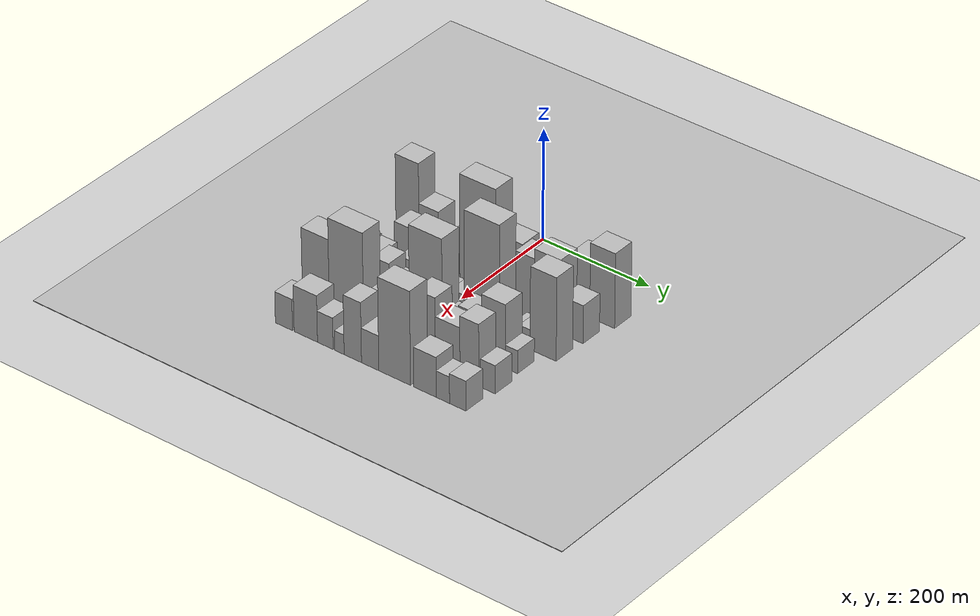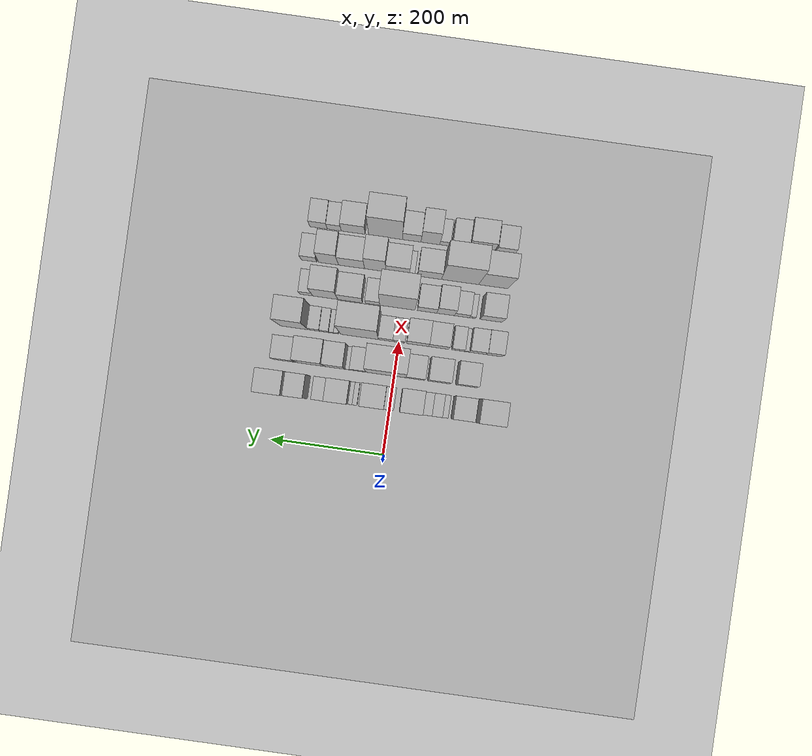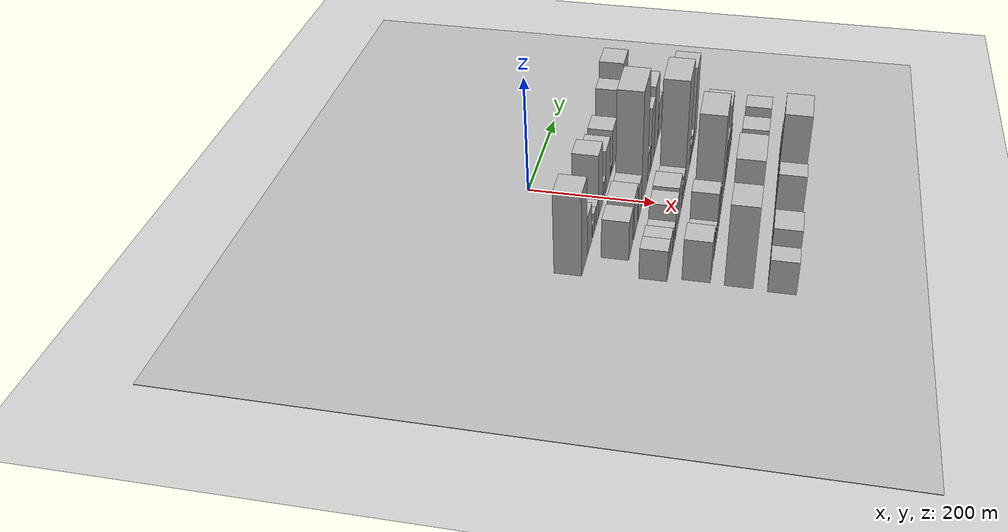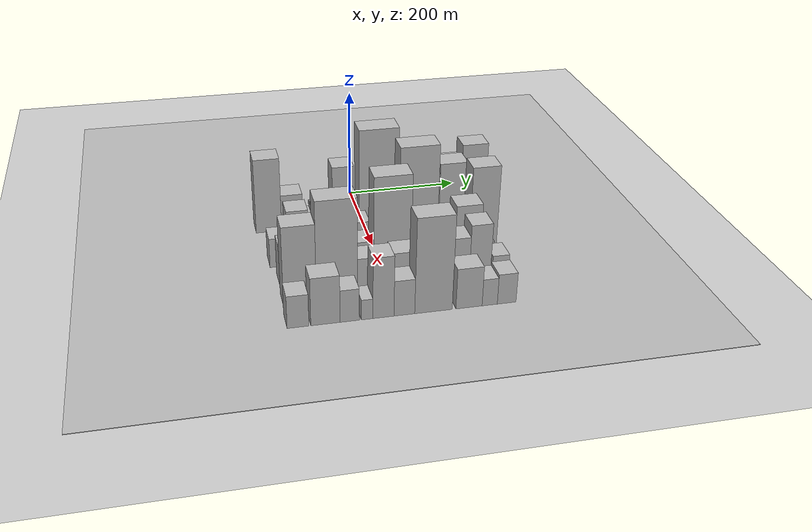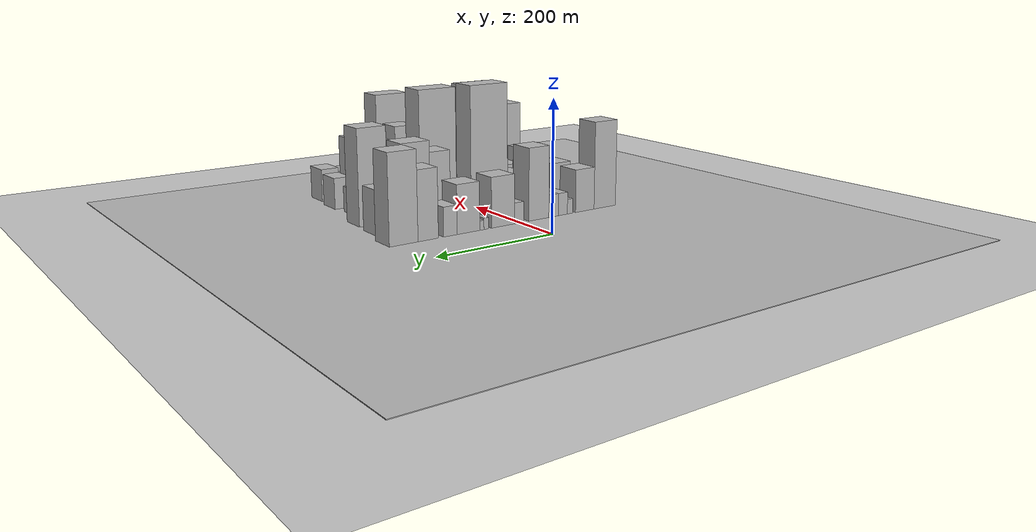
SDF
<sdf version="1.6">
 <world name="default">
  <include><name>ground_plane_1</name><uri>model://HANNAS_ground_plane</uri></include>
  <include>
   <name>ground_plane_2</name>
   <uri>model://HANNAS_ground_plane</uri>
   <pose>100 0 0  0 0 0</pose>
  </include>
  <model name="building_22">
   <static>1</static>
   <pose>100.0000 -168.6694 0 0.000000 0.000000 0.000000</pose>
   <link name="link">
    <pose>0 0 70.50 0 0 0</pose>
    <collision name="collision"><geometry><box><size>40.0000 45.0312 141.0000</size></box></geometry></collision>
    <visual name="visual">
     <cast_shadows>0</cast_shadows>
     <geometry><box><size>40.0000 45.0312 141.0000</size></box></geometry>
     <material>
      <script>
       <uri>model://HANNAS_wall/materials/scripts</uri>
       <uri>model://HANNAS_wall/materials/textures</uri>
       <name>vrc/HANNAS_wall</name>
      </script>
     </material>
    </visual>
   </link>
  </model>
  <model name="building_23">
   <static>1</static>
   <pose>100.0000 -127.0873 0 0.000000 0.000000 0.000000</pose>
   <link name="link">
    <pose>0 0 34.50 0 0 0</pose>
    <collision name="collision"><geometry><box><size>40.0000 38.1330 69.0000</size></box></geometry></collision>
    <visual name="visual">
     <cast_shadows>0</cast_shadows>
     <geometry><box><size>40.0000 38.1330 69.0000</size></box></geometry>
     <material>
      <script>
       <uri>model://HANNAS_wall/materials/scripts</uri>
       <uri>model://HANNAS_wall/materials/textures</uri>
       <name>vrc/HANNAS_wall</name>
      </script>
     </material>
    </visual>
   </link>
  </model>
  <model name="building_24">
   <static>1</static>
   <pose>100.0000 -96.7946 0 0.000000 0.000000 0.000000</pose>
   <link name="link">
    <pose>0 0 12.00 0 0 0</pose>
    <collision name="collision"><geometry><box><size>40.0000 10.4522 24.0000</size></box></geometry></collision>
    <visual name="visual">
     <cast_shadows>0</cast_shadows>
     <geometry><box><size>40.0000 10.4522 24.0000</size></box></geometry>
     <material>
      <script>
       <uri>model://HANNAS_wall/materials/scripts</uri>
       <uri>model://HANNAS_wall/materials/textures</uri>
       <name>vrc/HANNAS_wall</name>
      </script>
     </material>
    </visual>
   </link>
  </model>
  <model name="building_25">
   <static>1</static>
   <pose>100.0000 -82.4453 0 0.000000 0.000000 0.000000</pose>
   <link name="link">
    <pose>0 0 18.00 0 0 0</pose>
    <collision name="collision"><geometry><box><size>40.0000 18.2464 36.0000</size></box></geometry></collision>
    <visual name="visual">
     <cast_shadows>0</cast_shadows>
     <geometry><box><size>40.0000 18.2464 36.0000</size></box></geometry>
     <material>
      <script>
       <uri>model://HANNAS_wall/materials/scripts</uri>
       <uri>model://HANNAS_wall/materials/textures</uri>
       <name>vrc/HANNAS_wall</name>
      </script>
     </material>
    </visual>
   </link>
  </model>
  <model name="building_26">
   <static>1</static>
   <pose>100.0000 -64.1063 0 0.000000 0.000000 0.000000</pose>
   <link name="link">
    <pose>0 0 18.00 0 0 0</pose>
    <collision name="collision"><geometry><box><size>40.0000 18.4317 36.0000</size></box></geometry></collision>
    <visual name="visual">
     <cast_shadows>0</cast_shadows>
     <geometry><box><size>40.0000 18.4317 36.0000</size></box></geometry>
     <material>
      <script>
       <uri>model://HANNAS_wall/materials/scripts</uri>
       <uri>model://HANNAS_wall/materials/textures</uri>
       <name>vrc/HANNAS_wall</name>
      </script>
     </material>
    </visual>
   </link>
  </model>
  <model name="building_27">
   <static>1</static>
   <pose>100.0000 -35.6017 0 0.000000 0.000000 0.000000</pose>
   <link name="link">
    <pose>0 0 57.00 0 0 0</pose>
    <collision name="collision"><geometry><box><size>40.0000 38.5774 114.0000</size></box></geometry></collision>
    <visual name="visual">
     <cast_shadows>0</cast_shadows>
     <geometry><box><size>40.0000 38.5774 114.0000</size></box></geometry>
     <material>
      <script>
       <uri>model://HANNAS_wall/materials/scripts</uri>
       <uri>model://HANNAS_wall/materials/textures</uri>
       <name>vrc/HANNAS_wall</name>
      </script>
     </material>
    </visual>
   </link>
  </model>
  <model name="building_28">
   <static>1</static>
   <pose>100.0000 2.2748 0 0.000000 0.000000 0.000000</pose>
   <link name="link">
    <pose>0 0 16.50 0 0 0</pose>
    <collision name="collision"><geometry><box><size>40.0000 17.1756 33.0000</size></box></geometry></collision>
    <visual name="visual">
     <cast_shadows>0</cast_shadows>
     <geometry><box><size>40.0000 17.1756 33.0000</size></box></geometry>
     <material>
      <script>
       <uri>model://HANNAS_wall/materials/scripts</uri>
       <uri>model://HANNAS_wall/materials/textures</uri>
       <name>vrc/HANNAS_wall</name>
      </script>
     </material>
    </visual>
   </link>
  </model>
  <model name="building_29">
   <static>1</static>
   <pose>100.0000 32.0478 0 0.000000 0.000000 0.000000</pose>
   <link name="link">
    <pose>0 0 39.00 0 0 0</pose>
    <collision name="collision"><geometry><box><size>40.0000 42.3704 78.0000</size></box></geometry></collision>
    <visual name="visual">
     <cast_shadows>0</cast_shadows>
     <geometry><box><size>40.0000 42.3704 78.0000</size></box></geometry>
     <material>
      <script>
       <uri>model://HANNAS_wall/materials/scripts</uri>
       <uri>model://HANNAS_wall/materials/textures</uri>
       <name>vrc/HANNAS_wall</name>
      </script>
     </material>
    </visual>
   </link>
  </model>
  <model name="building_30">
   <static>1</static>
   <pose>100.0000 62.5855 0 0.000000 0.000000 0.000000</pose>
   <link name="link">
    <pose>0 0 9.00 0 0 0</pose>
    <collision name="collision"><geometry><box><size>40.0000 8.7050 18.0000</size></box></geometry></collision>
    <visual name="visual">
     <cast_shadows>0</cast_shadows>
     <geometry><box><size>40.0000 8.7050 18.0000</size></box></geometry>
     <material>
      <script>
       <uri>model://HANNAS_wall/materials/scripts</uri>
       <uri>model://HANNAS_wall/materials/textures</uri>
       <name>vrc/HANNAS_wall</name>
      </script>
     </material>
    </visual>
   </link>
  </model>
  <model name="building_31">
   <static>1</static>
   <pose>100.0000 70.6687 0 0.000000 0.000000 0.000000</pose>
   <link name="link">
    <pose>0 0 7.50 0 0 0</pose>
    <collision name="collision"><geometry><box><size>40.0000 7.4614 15.0000</size></box></geometry></collision>
    <visual name="visual">
     <cast_shadows>0</cast_shadows>
     <geometry><box><size>40.0000 7.4614 15.0000</size></box></geometry>
     <material>
      <script>
       <uri>model://HANNAS_wall/materials/scripts</uri>
       <uri>model://HANNAS_wall/materials/textures</uri>
       <name>vrc/HANNAS_wall</name>
      </script>
     </material>
    </visual>
   </link>
  </model>
  <model name="building_32">
   <static>1</static>
   <pose>100.0000 94.2671 0 0.000000 0.000000 0.000000</pose>
   <link name="link">
    <pose>0 0 37.50 0 0 0</pose>
    <collision name="collision"><geometry><box><size>40.0000 39.7354 75.0000</size></box></geometry></collision>
    <visual name="visual">
     <cast_shadows>0</cast_shadows>
     <geometry><box><size>40.0000 39.7354 75.0000</size></box></geometry>
     <material>
      <script>
       <uri>model://HANNAS_wall/materials/scripts</uri>
       <uri>model://HANNAS_wall/materials/textures</uri>
       <name>vrc/HANNAS_wall</name>
      </script>
     </material>
    </visual>
   </link>
  </model>
  <model name="building_33">
   <static>1</static>
   <pose>100.0000 125.7722 0 0.000000 0.000000 0.000000</pose>
   <link name="link">
    <pose>0 0 22.50 0 0 0</pose>
    <collision name="collision"><geometry><box><size>40.0000 23.2749 45.0000</size></box></geometry></collision>
    <visual name="visual">
     <cast_shadows>0</cast_shadows>
     <geometry><box><size>40.0000 23.2749 45.0000</size></box></geometry>
     <material>
      <script>
       <uri>model://HANNAS_wall/materials/scripts</uri>
       <uri>model://HANNAS_wall/materials/textures</uri>
       <name>vrc/HANNAS_wall</name>
      </script>
     </material>
    </visual>
   </link>
  </model>
  <model name="building_34">
   <static>1</static>
   <pose>100.0000 163.4008 0 0.000000 0.000000 0.000000</pose>
   <link name="link">
    <pose>0 0 52.50 0 0 0</pose>
    <collision name="collision"><geometry><box><size>40.0000 33.9822 105.0000</size></box></geometry></collision>
    <visual name="visual">
     <cast_shadows>0</cast_shadows>
     <geometry><box><size>40.0000 33.9822 105.0000</size></box></geometry>
     <material>
      <script>
       <uri>model://HANNAS_wall/materials/scripts</uri>
       <uri>model://HANNAS_wall/materials/textures</uri>
       <name>vrc/HANNAS_wall</name>
      </script>
     </material>
    </visual>
   </link>
  </model>
  <model name="building_35">
   <static>1</static>
   <pose>100.0000 203.6889 0 0.000000 0.000000 0.000000</pose>
   <link name="link">
    <pose>0 0 67.50 0 0 0</pose>
    <collision name="collision"><geometry><box><size>40.0000 46.5941 135.0000</size></box></geometry></collision>
    <visual name="visual">
     <cast_shadows>0</cast_shadows>
     <geometry><box><size>40.0000 46.5941 135.0000</size></box></geometry>
     <material>
      <script>
       <uri>model://HANNAS_wall/materials/scripts</uri>
       <uri>model://HANNAS_wall/materials/textures</uri>
       <name>vrc/HANNAS_wall</name>
      </script>
     </material>
    </visual>
   </link>
  </model>
  <model name="building_78">
   <static>1</static>
   <pose>160.0000 -126.2597 0 0.000000 0.000000 0.000000</pose>
   <link name="link">
    <pose>0 0 34.50 0 0 0</pose>
    <collision name="collision"><geometry><box><size>40.0000 37.5945 69.0000</size></box></geometry></collision>
    <visual name="visual">
     <cast_shadows>0</cast_shadows>
     <geometry><box><size>40.0000 37.5945 69.0000</size></box></geometry>
     <material>
      <script>
       <uri>model://HANNAS_wall/materials/scripts</uri>
       <uri>model://HANNAS_wall/materials/textures</uri>
       <name>vrc/HANNAS_wall</name>
      </script>
     </material>
    </visual>
   </link>
  </model>
  <model name="building_79">
   <static>1</static>
   <pose>160.0000 -77.7265 0 0.000000 0.000000 0.000000</pose>
   <link name="link">
    <pose>0 0 37.50 0 0 0</pose>
    <collision name="collision"><geometry><box><size>40.0000 39.4718 75.0000</size></box></geometry></collision>
    <visual name="visual">
     <cast_shadows>0</cast_shadows>
     <geometry><box><size>40.0000 39.4718 75.0000</size></box></geometry>
     <material>
      <script>
       <uri>model://HANNAS_wall/materials/scripts</uri>
       <uri>model://HANNAS_wall/materials/textures</uri>
       <name>vrc/HANNAS_wall</name>
      </script>
     </material>
    </visual>
   </link>
  </model>
  <model name="building_80">
   <static>1</static>
   <pose>160.0000 -35.9864 0 0.000000 0.000000 0.000000</pose>
   <link name="link">
    <pose>0 0 31.50 0 0 0</pose>
    <collision name="collision"><geometry><box><size>40.0000 34.0084 63.0000</size></box></geometry></collision>
    <visual name="visual">
     <cast_shadows>0</cast_shadows>
     <geometry><box><size>40.0000 34.0084 63.0000</size></box></geometry>
     <material>
      <script>
       <uri>model://HANNAS_wall/materials/scripts</uri>
       <uri>model://HANNAS_wall/materials/textures</uri>
       <name>vrc/HANNAS_wall</name>
      </script>
     </material>
    </visual>
   </link>
  </model>
  <model name="building_81">
   <static>1</static>
   <pose>160.0000 15.2245 0 0.000000 0.000000 0.000000</pose>
   <link name="link">
    <pose>0 0 103.50 0 0 0</pose>
    <collision name="collision"><geometry><box><size>40.0000 68.4135 207.0000</size></box></geometry></collision>
    <visual name="visual">
     <cast_shadows>0</cast_shadows>
     <geometry><box><size>40.0000 68.4135 207.0000</size></box></geometry>
     <material>
      <script>
       <uri>model://HANNAS_wall/materials/scripts</uri>
       <uri>model://HANNAS_wall/materials/textures</uri>
       <name>vrc/HANNAS_wall</name>
      </script>
     </material>
    </visual>
   </link>
  </model>
  <model name="building_82">
   <static>1</static>
   <pose>160.0000 64.0984 0 0.000000 0.000000 0.000000</pose>
   <link name="link">
    <pose>0 0 25.50 0 0 0</pose>
    <collision name="collision"><geometry><box><size>40.0000 29.3343 51.0000</size></box></geometry></collision>
    <visual name="visual">
     <cast_shadows>0</cast_shadows>
     <geometry><box><size>40.0000 29.3343 51.0000</size></box></geometry>
     <material>
      <script>
       <uri>model://HANNAS_wall/materials/scripts</uri>
       <uri>model://HANNAS_wall/materials/textures</uri>
       <name>vrc/HANNAS_wall</name>
      </script>
     </material>
    </visual>
   </link>
  </model>
  <model name="building_83">
   <static>1</static>
   <pose>160.0000 82.9798 0 0.000000 0.000000 0.000000</pose>
   <link name="link">
    <pose>0 0 10.50 0 0 0</pose>
    <collision name="collision"><geometry><box><size>40.0000 8.4284 21.0000</size></box></geometry></collision>
    <visual name="visual">
     <cast_shadows>0</cast_shadows>
     <geometry><box><size>40.0000 8.4284 21.0000</size></box></geometry>
     <material>
      <script>
       <uri>model://HANNAS_wall/materials/scripts</uri>
       <uri>model://HANNAS_wall/materials/textures</uri>
       <name>vrc/HANNAS_wall</name>
      </script>
     </material>
    </visual>
   </link>
  </model>
  <model name="building_84">
   <static>1</static>
   <pose>160.0000 105.0675 0 0.000000 0.000000 0.000000</pose>
   <link name="link">
    <pose>0 0 57.00 0 0 0</pose>
    <collision name="collision"><geometry><box><size>40.0000 35.7471 114.0000</size></box></geometry></collision>
    <visual name="visual">
     <cast_shadows>0</cast_shadows>
     <geometry><box><size>40.0000 35.7471 114.0000</size></box></geometry>
     <material>
      <script>
       <uri>model://HANNAS_wall/materials/scripts</uri>
       <uri>model://HANNAS_wall/materials/textures</uri>
       <name>vrc/HANNAS_wall</name>
      </script>
     </material>
    </visual>
   </link>
  </model>
  <model name="building_85">
   <static>1</static>
   <pose>160.0000 147.1211 0 0.000000 0.000000 0.000000</pose>
   <link name="link">
    <pose>0 0 66.00 0 0 0</pose>
    <collision name="collision"><geometry><box><size>40.0000 48.3600 132.0000</size></box></geometry></collision>
    <visual name="visual">
     <cast_shadows>0</cast_shadows>
     <geometry><box><size>40.0000 48.3600 132.0000</size></box></geometry>
     <material>
      <script>
       <uri>model://HANNAS_wall/materials/scripts</uri>
       <uri>model://HANNAS_wall/materials/textures</uri>
       <name>vrc/HANNAS_wall</name>
      </script>
     </material>
    </visual>
   </link>
  </model>
  <model name="building_86">
   <static>1</static>
   <pose>160.0000 194.2117 0 0.000000 0.000000 0.000000</pose>
   <link name="link">
    <pose>0 0 34.50 0 0 0</pose>
    <collision name="collision"><geometry><box><size>40.0000 39.8213 69.0000</size></box></geometry></collision>
    <visual name="visual">
     <cast_shadows>0</cast_shadows>
     <geometry><box><size>40.0000 39.8213 69.0000</size></box></geometry>
     <material>
      <script>
       <uri>model://HANNAS_wall/materials/scripts</uri>
       <uri>model://HANNAS_wall/materials/textures</uri>
       <name>vrc/HANNAS_wall</name>
      </script>
     </material>
    </visual>
   </link>
  </model>
  <model name="building_137">
   <static>1</static>
   <pose>220.0000 -167.5142 0 0.000000 0.000000 0.000000</pose>
   <link name="link">
    <pose>0 0 27.00 0 0 0</pose>
    <collision name="collision"><geometry><box><size>40.0000 28.7188 54.0000</size></box></geometry></collision>
    <visual name="visual">
     <cast_shadows>0</cast_shadows>
     <geometry><box><size>40.0000 28.7188 54.0000</size></box></geometry>
     <material>
      <script>
       <uri>model://HANNAS_wall/materials/scripts</uri>
       <uri>model://HANNAS_wall/materials/textures</uri>
       <name>vrc/HANNAS_wall</name>
      </script>
     </material>
    </visual>
   </link>
  </model>
  <model name="building_138">
   <static>1</static>
   <pose>220.0000 -138.2313 0 0.000000 0.000000 0.000000</pose>
   <link name="link">
    <pose>0 0 25.50 0 0 0</pose>
    <collision name="collision"><geometry><box><size>40.0000 29.8470 51.0000</size></box></geometry></collision>
    <visual name="visual">
     <cast_shadows>0</cast_shadows>
     <geometry><box><size>40.0000 29.8470 51.0000</size></box></geometry>
     <material>
      <script>
       <uri>model://HANNAS_wall/materials/scripts</uri>
       <uri>model://HANNAS_wall/materials/textures</uri>
       <name>vrc/HANNAS_wall</name>
      </script>
     </material>
    </visual>
   </link>
  </model>
  <model name="building_139">
   <static>1</static>
   <pose>220.0000 -118.9698 0 0.000000 0.000000 0.000000</pose>
   <link name="link">
    <pose>0 0 9.00 0 0 0</pose>
    <collision name="collision"><geometry><box><size>40.0000 8.6760 18.0000</size></box></geometry></collision>
    <visual name="visual">
     <cast_shadows>0</cast_shadows>
     <geometry><box><size>40.0000 8.6760 18.0000</size></box></geometry>
     <material>
      <script>
       <uri>model://HANNAS_wall/materials/scripts</uri>
       <uri>model://HANNAS_wall/materials/textures</uri>
       <name>vrc/HANNAS_wall</name>
      </script>
     </material>
    </visual>
   </link>
  </model>
  <model name="building_140">
   <static>1</static>
   <pose>220.0000 -103.5277 0 0.000000 0.000000 0.000000</pose>
   <link name="link">
    <pose>0 0 19.50 0 0 0</pose>
    <collision name="collision"><geometry><box><size>40.0000 22.2082 39.0000</size></box></geometry></collision>
    <visual name="visual">
     <cast_shadows>0</cast_shadows>
     <geometry><box><size>40.0000 22.2082 39.0000</size></box></geometry>
     <material>
      <script>
       <uri>model://HANNAS_wall/materials/scripts</uri>
       <uri>model://HANNAS_wall/materials/textures</uri>
       <name>vrc/HANNAS_wall</name>
      </script>
     </material>
    </visual>
   </link>
  </model>
  <model name="building_141">
   <static>1</static>
   <pose>220.0000 -69.5356 0 0.000000 0.000000 0.000000</pose>
   <link name="link">
    <pose>0 0 31.50 0 0 0</pose>
    <collision name="collision"><geometry><box><size>40.0000 35.7761 63.0000</size></box></geometry></collision>
    <visual name="visual">
     <cast_shadows>0</cast_shadows>
     <geometry><box><size>40.0000 35.7761 63.0000</size></box></geometry>
     <material>
      <script>
       <uri>model://HANNAS_wall/materials/scripts</uri>
       <uri>model://HANNAS_wall/materials/textures</uri>
       <name>vrc/HANNAS_wall</name>
      </script>
     </material>
    </visual>
   </link>
  </model>
  <model name="building_142">
   <static>1</static>
   <pose>220.0000 -32.1963 0 0.000000 0.000000 0.000000</pose>
   <link name="link">
    <pose>0 0 34.50 0 0 0</pose>
    <collision name="collision"><geometry><box><size>40.0000 38.9025 69.0000</size></box></geometry></collision>
    <visual name="visual">
     <cast_shadows>0</cast_shadows>
     <geometry><box><size>40.0000 38.9025 69.0000</size></box></geometry>
     <material>
      <script>
       <uri>model://HANNAS_wall/materials/scripts</uri>
       <uri>model://HANNAS_wall/materials/textures</uri>
       <name>vrc/HANNAS_wall</name>
      </script>
     </material>
    </visual>
   </link>
  </model>
  <model name="building_143">
   <static>1</static>
   <pose>220.0000 0.9673 0 0.000000 0.000000 0.000000</pose>
   <link name="link">
    <pose>0 0 19.50 0 0 0</pose>
    <collision name="collision"><geometry><box><size>40.0000 21.4247 39.0000</size></box></geometry></collision>
    <visual name="visual">
     <cast_shadows>0</cast_shadows>
     <geometry><box><size>40.0000 21.4247 39.0000</size></box></geometry>
     <material>
      <script>
       <uri>model://HANNAS_wall/materials/scripts</uri>
       <uri>model://HANNAS_wall/materials/textures</uri>
       <name>vrc/HANNAS_wall</name>
      </script>
     </material>
    </visual>
   </link>
  </model>
  <model name="building_144">
   <static>1</static>
   <pose>220.0000 24.5465 0 0.000000 0.000000 0.000000</pose>
   <link name="link">
    <pose>0 0 22.50 0 0 0</pose>
    <collision name="collision"><geometry><box><size>40.0000 25.7337 45.0000</size></box></geometry></collision>
    <visual name="visual">
     <cast_shadows>0</cast_shadows>
     <geometry><box><size>40.0000 25.7337 45.0000</size></box></geometry>
     <material>
      <script>
       <uri>model://HANNAS_wall/materials/scripts</uri>
       <uri>model://HANNAS_wall/materials/textures</uri>
       <name>vrc/HANNAS_wall</name>
      </script>
     </material>
    </visual>
   </link>
  </model>
  <model name="building_145">
   <static>1</static>
   <pose>220.0000 70.5505 0 0.000000 0.000000 0.000000</pose>
   <link name="link">
    <pose>0 0 99.00 0 0 0</pose>
    <collision name="collision"><geometry><box><size>40.0000 66.2743 198.0000</size></box></geometry></collision>
    <visual name="visual">
     <cast_shadows>0</cast_shadows>
     <geometry><box><size>40.0000 66.2743 198.0000</size></box></geometry>
     <material>
      <script>
       <uri>model://HANNAS_wall/materials/scripts</uri>
       <uri>model://HANNAS_wall/materials/textures</uri>
       <name>vrc/HANNAS_wall</name>
      </script>
     </material>
    </visual>
   </link>
  </model>
  <model name="building_146">
   <static>1</static>
   <pose>220.0000 112.0741 0 0.000000 0.000000 0.000000</pose>
   <link name="link">
    <pose>0 0 9.00 0 0 0</pose>
    <collision name="collision"><geometry><box><size>40.0000 8.7728 18.0000</size></box></geometry></collision>
    <visual name="visual">
     <cast_shadows>0</cast_shadows>
     <geometry><box><size>40.0000 8.7728 18.0000</size></box></geometry>
     <material>
      <script>
       <uri>model://HANNAS_wall/materials/scripts</uri>
       <uri>model://HANNAS_wall/materials/textures</uri>
       <name>vrc/HANNAS_wall</name>
      </script>
     </material>
    </visual>
   </link>
  </model>
  <model name="building_147">
   <static>1</static>
   <pose>220.0000 120.5434 0 0.000000 0.000000 0.000000</pose>
   <link name="link">
    <pose>0 0 9.00 0 0 0</pose>
    <collision name="collision"><geometry><box><size>40.0000 8.1659 18.0000</size></box></geometry></collision>
    <visual name="visual">
     <cast_shadows>0</cast_shadows>
     <geometry><box><size>40.0000 8.1659 18.0000</size></box></geometry>
     <material>
      <script>
       <uri>model://HANNAS_wall/materials/scripts</uri>
       <uri>model://HANNAS_wall/materials/textures</uri>
       <name>vrc/HANNAS_wall</name>
      </script>
     </material>
    </visual>
   </link>
  </model>
  <model name="building_148">
   <static>1</static>
   <pose>220.0000 132.6926 0 0.000000 0.000000 0.000000</pose>
   <link name="link">
    <pose>0 0 15.00 0 0 0</pose>
    <collision name="collision"><geometry><box><size>40.0000 16.1325 30.0000</size></box></geometry></collision>
    <visual name="visual">
     <cast_shadows>0</cast_shadows>
     <geometry><box><size>40.0000 16.1325 30.0000</size></box></geometry>
     <material>
      <script>
       <uri>model://HANNAS_wall/materials/scripts</uri>
       <uri>model://HANNAS_wall/materials/textures</uri>
       <name>vrc/HANNAS_wall</name>
      </script>
     </material>
    </visual>
   </link>
  </model>
  <model name="building_149">
   <static>1</static>
   <pose>220.0000 151.2144 0 0.000000 0.000000 0.000000</pose>
   <link name="link">
    <pose>0 0 18.00 0 0 0</pose>
    <collision name="collision"><geometry><box><size>40.0000 20.9111 36.0000</size></box></geometry></collision>
    <visual name="visual">
     <cast_shadows>0</cast_shadows>
     <geometry><box><size>40.0000 20.9111 36.0000</size></box></geometry>
     <material>
      <script>
       <uri>model://HANNAS_wall/materials/scripts</uri>
       <uri>model://HANNAS_wall/materials/textures</uri>
       <name>vrc/HANNAS_wall</name>
      </script>
     </material>
    </visual>
   </link>
  </model>
  <model name="building_150">
   <static>1</static>
   <pose>220.0000 185.9614 0 0.000000 0.000000 0.000000</pose>
   <link name="link">
    <pose>0 0 75.00 0 0 0</pose>
    <collision name="collision"><geometry><box><size>40.0000 48.5829 150.0000</size></box></geometry></collision>
    <visual name="visual">
     <cast_shadows>0</cast_shadows>
     <geometry><box><size>40.0000 48.5829 150.0000</size></box></geometry>
     <material>
      <script>
       <uri>model://HANNAS_wall/materials/scripts</uri>
       <uri>model://HANNAS_wall/materials/textures</uri>
       <name>vrc/HANNAS_wall</name>
      </script>
     </material>
    </visual>
   </link>
  </model>
  <model name="building_194">
   <static>1</static>
   <pose>280.0000 -154.0582 0 0.000000 0.000000 0.000000</pose>
   <link name="link">
    <pose>0 0 36.00 0 0 0</pose>
    <collision name="collision"><geometry><box><size>40.0000 39.1322 72.0000</size></box></geometry></collision>
    <visual name="visual">
     <cast_shadows>0</cast_shadows>
     <geometry><box><size>40.0000 39.1322 72.0000</size></box></geometry>
     <material>
      <script>
       <uri>model://HANNAS_wall/materials/scripts</uri>
       <uri>model://HANNAS_wall/materials/textures</uri>
       <name>vrc/HANNAS_wall</name>
      </script>
     </material>
    </visual>
   </link>
  </model>
  <model name="building_195">
   <static>1</static>
   <pose>280.0000 -121.1529 0 0.000000 0.000000 0.000000</pose>
   <link name="link">
    <pose>0 0 12.00 0 0 0</pose>
    <collision name="collision"><geometry><box><size>40.0000 10.6785 24.0000</size></box></geometry></collision>
    <visual name="visual">
     <cast_shadows>0</cast_shadows>
     <geometry><box><size>40.0000 10.6785 24.0000</size></box></geometry>
     <material>
      <script>
       <uri>model://HANNAS_wall/materials/scripts</uri>
       <uri>model://HANNAS_wall/materials/textures</uri>
       <name>vrc/HANNAS_wall</name>
      </script>
     </material>
    </visual>
   </link>
  </model>
  <model name="building_196">
   <static>1</static>
   <pose>280.0000 -102.4514 0 0.000000 0.000000 0.000000</pose>
   <link name="link">
    <pose>0 0 22.50 0 0 0</pose>
    <collision name="collision"><geometry><box><size>40.0000 26.7245 45.0000</size></box></geometry></collision>
    <visual name="visual">
     <cast_shadows>0</cast_shadows>
     <geometry><box><size>40.0000 26.7245 45.0000</size></box></geometry>
     <material>
      <script>
       <uri>model://HANNAS_wall/materials/scripts</uri>
       <uri>model://HANNAS_wall/materials/textures</uri>
       <name>vrc/HANNAS_wall</name>
      </script>
     </material>
    </visual>
   </link>
  </model>
  <model name="building_197">
   <static>1</static>
   <pose>280.0000 -73.4893 0 0.000000 0.000000 0.000000</pose>
   <link name="link">
    <pose>0 0 46.50 0 0 0</pose>
    <collision name="collision"><geometry><box><size>40.0000 31.1997 93.0000</size></box></geometry></collision>
    <visual name="visual">
     <cast_shadows>0</cast_shadows>
     <geometry><box><size>40.0000 31.1997 93.0000</size></box></geometry>
     <material>
      <script>
       <uri>model://HANNAS_wall/materials/scripts</uri>
       <uri>model://HANNAS_wall/materials/textures</uri>
       <name>vrc/HANNAS_wall</name>
      </script>
     </material>
    </visual>
   </link>
  </model>
  <model name="building_198">
   <static>1</static>
   <pose>280.0000 -40.6269 0 0.000000 0.000000 0.000000</pose>
   <link name="link">
    <pose>0 0 33.00 0 0 0</pose>
    <collision name="collision"><geometry><box><size>40.0000 34.5250 66.0000</size></box></geometry></collision>
    <visual name="visual">
     <cast_shadows>0</cast_shadows>
     <geometry><box><size>40.0000 34.5250 66.0000</size></box></geometry>
     <material>
      <script>
       <uri>model://HANNAS_wall/materials/scripts</uri>
       <uri>model://HANNAS_wall/materials/textures</uri>
       <name>vrc/HANNAS_wall</name>
      </script>
     </material>
    </visual>
   </link>
  </model>
  <model name="building_199">
   <static>1</static>
   <pose>280.0000 11.9639 0 0.000000 0.000000 0.000000</pose>
   <link name="link">
    <pose>0 0 90.00 0 0 0</pose>
    <collision name="collision"><geometry><box><size>40.0000 62.6566 180.0000</size></box></geometry></collision>
    <visual name="visual">
     <cast_shadows>0</cast_shadows>
     <geometry><box><size>40.0000 62.6566 180.0000</size></box></geometry>
     <material>
      <script>
       <uri>model://HANNAS_wall/materials/scripts</uri>
       <uri>model://HANNAS_wall/materials/textures</uri>
       <name>vrc/HANNAS_wall</name>
      </script>
     </material>
    </visual>
   </link>
  </model>
  <model name="building_200">
   <static>1</static>
   <pose>280.0000 56.0909 0 0.000000 0.000000 0.000000</pose>
   <link name="link">
    <pose>0 0 24.00 0 0 0</pose>
    <collision name="collision"><geometry><box><size>40.0000 25.5975 48.0000</size></box></geometry></collision>
    <visual name="visual">
     <cast_shadows>0</cast_shadows>
     <geometry><box><size>40.0000 25.5975 48.0000</size></box></geometry>
     <material>
      <script>
       <uri>model://HANNAS_wall/materials/scripts</uri>
       <uri>model://HANNAS_wall/materials/textures</uri>
       <name>vrc/HANNAS_wall</name>
      </script>
     </material>
    </visual>
   </link>
  </model>
  <model name="building_201">
   <static>1</static>
   <pose>280.0000 95.7626 0 0.000000 0.000000 0.000000</pose>
   <link name="link">
    <pose>0 0 37.50 0 0 0</pose>
    <collision name="collision"><geometry><box><size>40.0000 43.7458 75.0000</size></box></geometry></collision>
    <visual name="visual">
     <cast_shadows>0</cast_shadows>
     <geometry><box><size>40.0000 43.7458 75.0000</size></box></geometry>
     <material>
      <script>
       <uri>model://HANNAS_wall/materials/scripts</uri>
       <uri>model://HANNAS_wall/materials/textures</uri>
       <name>vrc/HANNAS_wall</name>
      </script>
     </material>
    </visual>
   </link>
  </model>
  <model name="building_202">
   <static>1</static>
   <pose>280.0000 139.8098 0 0.000000 0.000000 0.000000</pose>
   <link name="link">
    <pose>0 0 57.00 0 0 0</pose>
    <collision name="collision"><geometry><box><size>40.0000 44.3487 114.0000</size></box></geometry></collision>
    <visual name="visual">
     <cast_shadows>0</cast_shadows>
     <geometry><box><size>40.0000 44.3487 114.0000</size></box></geometry>
     <material>
      <script>
       <uri>model://HANNAS_wall/materials/scripts</uri>
       <uri>model://HANNAS_wall/materials/textures</uri>
       <name>vrc/HANNAS_wall</name>
      </script>
     </material>
    </visual>
   </link>
  </model>
  <model name="building_203">
   <static>1</static>
   <pose>280.0000 173.4415 0 0.000000 0.000000 0.000000</pose>
   <link name="link">
    <pose>0 0 21.00 0 0 0</pose>
    <collision name="collision"><geometry><box><size>40.0000 22.9148 42.0000</size></box></geometry></collision>
    <visual name="visual">
     <cast_shadows>0</cast_shadows>
     <geometry><box><size>40.0000 22.9148 42.0000</size></box></geometry>
     <material>
      <script>
       <uri>model://HANNAS_wall/materials/scripts</uri>
       <uri>model://HANNAS_wall/materials/textures</uri>
       <name>vrc/HANNAS_wall</name>
      </script>
     </material>
    </visual>
   </link>
  </model>
  <model name="building_243">
   <static>1</static>
   <pose>340.0000 -149.7953 0 0.000000 0.000000 0.000000</pose>
   <link name="link">
    <pose>0 0 70.50 0 0 0</pose>
    <collision name="collision"><geometry><box><size>40.0000 52.0092 141.0000</size></box></geometry></collision>
    <visual name="visual">
     <cast_shadows>0</cast_shadows>
     <geometry><box><size>40.0000 52.0092 141.0000</size></box></geometry>
     <material>
      <script>
       <uri>model://HANNAS_wall/materials/scripts</uri>
       <uri>model://HANNAS_wall/materials/textures</uri>
       <name>vrc/HANNAS_wall</name>
      </script>
     </material>
    </visual>
   </link>
  </model>
  <model name="building_244">
   <static>1</static>
   <pose>340.0000 -90.8536 0 0.000000 0.000000 0.000000</pose>
   <link name="link">
    <pose>0 0 90.00 0 0 0</pose>
    <collision name="collision"><geometry><box><size>40.0000 65.8742 180.0000</size></box></geometry></collision>
    <visual name="visual">
     <cast_shadows>0</cast_shadows>
     <geometry><box><size>40.0000 65.8742 180.0000</size></box></geometry>
     <material>
      <script>
       <uri>model://HANNAS_wall/materials/scripts</uri>
       <uri>model://HANNAS_wall/materials/textures</uri>
       <name>vrc/HANNAS_wall</name>
      </script>
     </material>
    </visual>
   </link>
  </model>
  <model name="building_245">
   <static>1</static>
   <pose>340.0000 -36.6448 0 0.000000 0.000000 0.000000</pose>
   <link name="link">
    <pose>0 0 36.00 0 0 0</pose>
    <collision name="collision"><geometry><box><size>40.0000 42.5434 72.0000</size></box></geometry></collision>
    <visual name="visual">
     <cast_shadows>0</cast_shadows>
     <geometry><box><size>40.0000 42.5434 72.0000</size></box></geometry>
     <material>
      <script>
       <uri>model://HANNAS_wall/materials/scripts</uri>
       <uri>model://HANNAS_wall/materials/textures</uri>
       <name>vrc/HANNAS_wall</name>
      </script>
     </material>
    </visual>
   </link>
  </model>
  <model name="building_246">
   <static>1</static>
   <pose>340.0000 -5.6925 0 0.000000 0.000000 0.000000</pose>
   <link name="link">
    <pose>0 0 10.50 0 0 0</pose>
    <collision name="collision"><geometry><box><size>40.0000 9.3612 21.0000</size></box></geometry></collision>
    <visual name="visual">
     <cast_shadows>0</cast_shadows>
     <geometry><box><size>40.0000 9.3612 21.0000</size></box></geometry>
     <material>
      <script>
       <uri>model://HANNAS_wall/materials/scripts</uri>
       <uri>model://HANNAS_wall/materials/textures</uri>
       <name>vrc/HANNAS_wall</name>
      </script>
     </material>
    </visual>
   </link>
  </model>
  <model name="building_247">
   <static>1</static>
   <pose>340.0000 20.0560 0 0.000000 0.000000 0.000000</pose>
   <link name="link">
    <pose>0 0 37.50 0 0 0</pose>
    <collision name="collision"><geometry><box><size>40.0000 42.1358 75.0000</size></box></geometry></collision>
    <visual name="visual">
     <cast_shadows>0</cast_shadows>
     <geometry><box><size>40.0000 42.1358 75.0000</size></box></geometry>
     <material>
      <script>
       <uri>model://HANNAS_wall/materials/scripts</uri>
       <uri>model://HANNAS_wall/materials/textures</uri>
       <name>vrc/HANNAS_wall</name>
      </script>
     </material>
    </visual>
   </link>
  </model>
  <model name="building_248">
   <static>1</static>
   <pose>340.0000 59.7834 0 0.000000 0.000000 0.000000</pose>
   <link name="link">
    <pose>0 0 61.50 0 0 0</pose>
    <collision name="collision"><geometry><box><size>40.0000 37.3188 123.0000</size></box></geometry></collision>
    <visual name="visual">
     <cast_shadows>0</cast_shadows>
     <geometry><box><size>40.0000 37.3188 123.0000</size></box></geometry>
     <material>
      <script>
       <uri>model://HANNAS_wall/materials/scripts</uri>
       <uri>model://HANNAS_wall/materials/textures</uri>
       <name>vrc/HANNAS_wall</name>
      </script>
     </material>
    </visual>
   </link>
  </model>
  <model name="building_249">
   <static>1</static>
   <pose>340.0000 101.5035 0 0.000000 0.000000 0.000000</pose>
   <link name="link">
    <pose>0 0 45.00 0 0 0</pose>
    <collision name="collision"><geometry><box><size>40.0000 46.1215 90.0000</size></box></geometry></collision>
    <visual name="visual">
     <cast_shadows>0</cast_shadows>
     <geometry><box><size>40.0000 46.1215 90.0000</size></box></geometry>
     <material>
      <script>
       <uri>model://HANNAS_wall/materials/scripts</uri>
       <uri>model://HANNAS_wall/materials/textures</uri>
       <name>vrc/HANNAS_wall</name>
      </script>
     </material>
    </visual>
   </link>
  </model>
  <model name="building_250">
   <static>1</static>
   <pose>340.0000 142.1750 0 0.000000 0.000000 0.000000</pose>
   <link name="link">
    <pose>0 0 55.50 0 0 0</pose>
    <collision name="collision"><geometry><box><size>40.0000 35.2214 111.0000</size></box></geometry></collision>
    <visual name="visual">
     <cast_shadows>0</cast_shadows>
     <geometry><box><size>40.0000 35.2214 111.0000</size></box></geometry>
     <material>
      <script>
       <uri>model://HANNAS_wall/materials/scripts</uri>
       <uri>model://HANNAS_wall/materials/textures</uri>
       <name>vrc/HANNAS_wall</name>
      </script>
     </material>
    </visual>
   </link>
  </model>
  <model name="building_251">
   <static>1</static>
   <pose>340.0000 176.6803 0 0.000000 0.000000 0.000000</pose>
   <link name="link">
    <pose>0 0 25.50 0 0 0</pose>
    <collision name="collision"><geometry><box><size>40.0000 27.7892 51.0000</size></box></geometry></collision>
    <visual name="visual">
     <cast_shadows>0</cast_shadows>
     <geometry><box><size>40.0000 27.7892 51.0000</size></box></geometry>
     <material>
      <script>
       <uri>model://HANNAS_wall/materials/scripts</uri>
       <uri>model://HANNAS_wall/materials/textures</uri>
       <name>vrc/HANNAS_wall</name>
      </script>
     </material>
    </visual>
   </link>
  </model>
  <model name="building_298">
   <static>1</static>
   <pose>400.0000 -162.0335 0 0.000000 0.000000 0.000000</pose>
   <link name="link">
    <pose>0 0 28.50 0 0 0</pose>
    <collision name="collision"><geometry><box><size>40.0000 33.2361 57.0000</size></box></geometry></collision>
    <visual name="visual">
     <cast_shadows>0</cast_shadows>
     <geometry><box><size>40.0000 33.2361 57.0000</size></box></geometry>
     <material>
      <script>
       <uri>model://HANNAS_wall/materials/scripts</uri>
       <uri>model://HANNAS_wall/materials/textures</uri>
       <name>vrc/HANNAS_wall</name>
      </script>
     </material>
    </visual>
   </link>
  </model>
  <model name="building_299">
   <static>1</static>
   <pose>400.0000 -119.8722 0 0.000000 0.000000 0.000000</pose>
   <link name="link">
    <pose>0 0 42.00 0 0 0</pose>
    <collision name="collision"><geometry><box><size>40.0000 45.0867 84.0000</size></box></geometry></collision>
    <visual name="visual">
     <cast_shadows>0</cast_shadows>
     <geometry><box><size>40.0000 45.0867 84.0000</size></box></geometry>
     <material>
      <script>
       <uri>model://HANNAS_wall/materials/scripts</uri>
       <uri>model://HANNAS_wall/materials/textures</uri>
       <name>vrc/HANNAS_wall</name>
      </script>
     </material>
    </visual>
   </link>
  </model>
  <model name="building_300">
   <static>1</static>
   <pose>400.0000 -82.3155 0 0.000000 0.000000 0.000000</pose>
   <link name="link">
    <pose>0 0 28.50 0 0 0</pose>
    <collision name="collision"><geometry><box><size>40.0000 30.0267 57.0000</size></box></geometry></collision>
    <visual name="visual">
     <cast_shadows>0</cast_shadows>
     <geometry><box><size>40.0000 30.0267 57.0000</size></box></geometry>
     <material>
      <script>
       <uri>model://HANNAS_wall/materials/scripts</uri>
       <uri>model://HANNAS_wall/materials/textures</uri>
       <name>vrc/HANNAS_wall</name>
      </script>
     </material>
    </visual>
   </link>
  </model>
  <model name="building_301">
   <static>1</static>
   <pose>400.0000 -55.2957 0 0.000000 0.000000 0.000000</pose>
   <link name="link">
    <pose>0 0 18.00 0 0 0</pose>
    <collision name="collision"><geometry><box><size>40.0000 18.0129 36.0000</size></box></geometry></collision>
    <visual name="visual">
     <cast_shadows>0</cast_shadows>
     <geometry><box><size>40.0000 18.0129 36.0000</size></box></geometry>
     <material>
      <script>
       <uri>model://HANNAS_wall/materials/scripts</uri>
       <uri>model://HANNAS_wall/materials/textures</uri>
       <name>vrc/HANNAS_wall</name>
      </script>
     </material>
    </visual>
   </link>
  </model>
  <model name="building_302">
   <static>1</static>
   <pose>400.0000 -29.7085 0 0.000000 0.000000 0.000000</pose>
   <link name="link">
    <pose>0 0 54.00 0 0 0</pose>
    <collision name="collision"><geometry><box><size>40.0000 33.1616 108.0000</size></box></geometry></collision>
    <visual name="visual">
     <cast_shadows>0</cast_shadows>
     <geometry><box><size>40.0000 33.1616 108.0000</size></box></geometry>
     <material>
      <script>
       <uri>model://HANNAS_wall/materials/scripts</uri>
       <uri>model://HANNAS_wall/materials/textures</uri>
       <name>vrc/HANNAS_wall</name>
      </script>
     </material>
    </visual>
   </link>
  </model>
  <model name="building_303">
   <static>1</static>
   <pose>400.0000 3.3133 0 0.000000 0.000000 0.000000</pose>
   <link name="link">
    <pose>0 0 31.50 0 0 0</pose>
    <collision name="collision"><geometry><box><size>40.0000 32.8819 63.0000</size></box></geometry></collision>
    <visual name="visual">
     <cast_shadows>0</cast_shadows>
     <geometry><box><size>40.0000 32.8819 63.0000</size></box></geometry>
     <material>
      <script>
       <uri>model://HANNAS_wall/materials/scripts</uri>
       <uri>model://HANNAS_wall/materials/textures</uri>
       <name>vrc/HANNAS_wall</name>
      </script>
     </material>
    </visual>
   </link>
  </model>
  <model name="building_304">
   <static>1</static>
   <pose>400.0000 49.7442 0 0.000000 0.000000 0.000000</pose>
   <link name="link">
    <pose>0 0 84.00 0 0 0</pose>
    <collision name="collision"><geometry><box><size>40.0000 59.9798 168.0000</size></box></geometry></collision>
    <visual name="visual">
     <cast_shadows>0</cast_shadows>
     <geometry><box><size>40.0000 59.9798 168.0000</size></box></geometry>
     <material>
      <script>
       <uri>model://HANNAS_wall/materials/scripts</uri>
       <uri>model://HANNAS_wall/materials/textures</uri>
       <name>vrc/HANNAS_wall</name>
      </script>
     </material>
    </visual>
   </link>
  </model>
  <model name="building_305">
   <static>1</static>
   <pose>400.0000 106.9279 0 0.000000 0.000000 0.000000</pose>
   <link name="link">
    <pose>0 0 36.00 0 0 0</pose>
    <collision name="collision"><geometry><box><size>40.0000 42.3877 72.0000</size></box></geometry></collision>
    <visual name="visual">
     <cast_shadows>0</cast_shadows>
     <geometry><box><size>40.0000 42.3877 72.0000</size></box></geometry>
     <material>
      <script>
       <uri>model://HANNAS_wall/materials/scripts</uri>
       <uri>model://HANNAS_wall/materials/textures</uri>
       <name>vrc/HANNAS_wall</name>
      </script>
     </material>
    </visual>
   </link>
  </model>
  <model name="building_306">
   <static>1</static>
   <pose>400.0000 140.5176 0 0.000000 0.000000 0.000000</pose>
   <link name="link">
    <pose>0 0 24.00 0 0 0</pose>
    <collision name="collision"><geometry><box><size>40.0000 24.7916 48.0000</size></box></geometry></collision>
    <visual name="visual">
     <cast_shadows>0</cast_shadows>
     <geometry><box><size>40.0000 24.7916 48.0000</size></box></geometry>
     <material>
      <script>
       <uri>model://HANNAS_wall/materials/scripts</uri>
       <uri>model://HANNAS_wall/materials/textures</uri>
       <name>vrc/HANNAS_wall</name>
      </script>
     </material>
    </visual>
   </link>
  </model>
  <model name="building_307">
   <static>1</static>
   <pose>400.0000 168.2863 0 0.000000 0.000000 0.000000</pose>
   <link name="link">
    <pose>0 0 27.00 0 0 0</pose>
    <collision name="collision"><geometry><box><size>40.0000 30.7459 54.0000</size></box></geometry></collision>
    <visual name="visual">
     <cast_shadows>0</cast_shadows>
     <geometry><box><size>40.0000 30.7459 54.0000</size></box></geometry>
     <material>
      <script>
       <uri>model://HANNAS_wall/materials/scripts</uri>
       <uri>model://HANNAS_wall/materials/textures</uri>
       <name>vrc/HANNAS_wall</name>
      </script>
     </material>
    </visual>
   </link>
  </model>
 </world>
</sdf>
